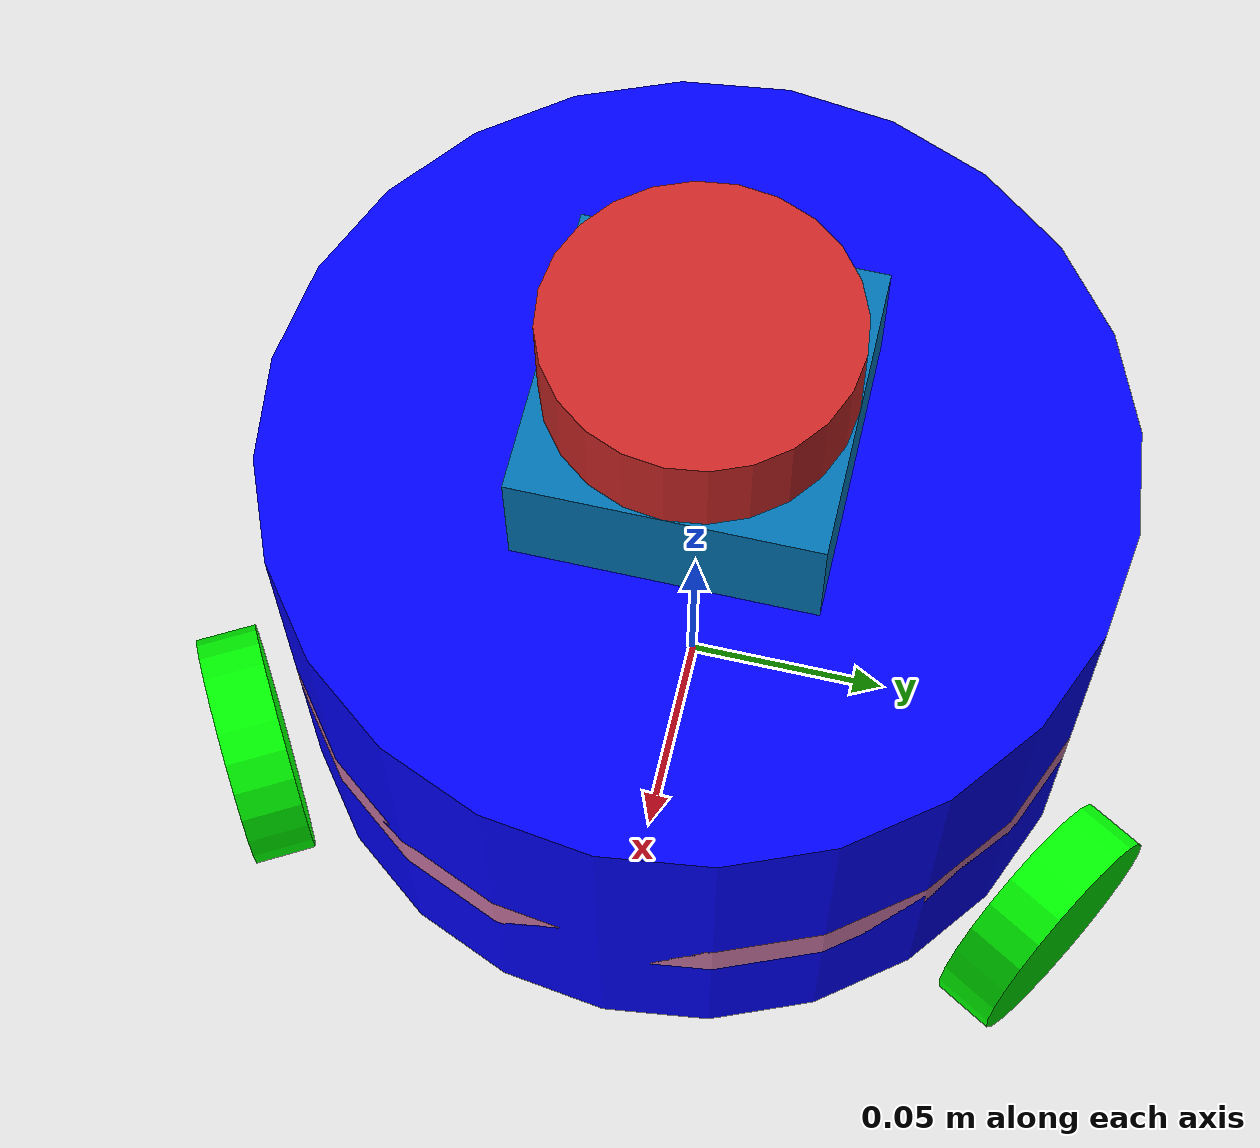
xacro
<?xml version="1.0"?>
<robot name="robot_omni" xmlns:xacro="http://ros.org/wiki/xacro">

  <xacro:include filename="/home/vboxuser/Escritorio/omnidirectional/urdf/robot_description.xacro"/>
  <xacro:include filename="/home/vboxuser/Escritorio/omnidirectional/urdf/ros_control.xacro"/>
  <xacro:include filename="/home/vboxuser/Escritorio/omnidirectional/urdf/gazebo_plugin.xacro"/>
  <xacro:include filename="/home/vboxuser/Escritorio/omnidirectional/urdf/lidar.xacro"/>
  <xacro:include filename="/home/vboxuser/Escritorio/omnidirectional/urdf/sharp_array.xacro"/>
  <xacro:include filename="/home/vboxuser/Escritorio/omnidirectional/urdf/odometria.xacro"/>
  <xacro:include filename="/home/vboxuser/Escritorio/omnidirectional/urdf/imu.xacro"/>

</robot>

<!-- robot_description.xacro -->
<robot xmlns:xacro="http://ros.org/wiki/xacro">

  <!-- ==================== Parámetros ==================== -->
  <xacro:property name="radio_rueda" value="0.029"/>
  <xacro:property name="ancho_rueda"  value="0.015"/>
  <xacro:property name="masa_rueda"  value="0.3"/>
  <xacro:property name="radio_base"  value="0.10"/>
  <xacro:property name="alto_base"  value="0.11"/>
  <xacro:property name="centro_a_rueda" value="0.115"/>

  <!-- Colores -->
  <xacro:property name="color_chasis" value="0 0 1 1"/>     <!-- Azul -->
  <xacro:property name="color_rueda" value="0 1 0 1"/>      <!-- Negro -->

  <!-- ==================== Chasis base ==================== -->
  <link name="base_link">
    <inertial>
      <mass value="3.0"/>
      <origin xyz="0 0 ${alto_base/2}" rpy="0 0 0"/>
      <inertia ixx="0.02" iyy="0.02" izz="0.04" ixy="0.0" ixz="0.0" iyz="0.0"/>
    </inertial>
    <collision>
      <geometry>
        <cylinder length="${alto_base}" radius="${radio_base}"/>
      </geometry>
      <origin xyz="0 0 ${alto_base/2}" rpy="0 0 0"/>
    </collision>
    <visual>
      <geometry>
        <cylinder length="${alto_base}" radius="${radio_base}"/>
      </geometry>
      <origin xyz="0 0 ${alto_base/2}" rpy="0 0 0"/>
      <material name="color_chasis">
        <color rgba="${color_chasis}"/>
      </material>
    </visual>
  </link>

  <!-- ==================== Macro para ruedas ==================== -->
  <xacro:macro name="rueda" params="link_name joint_name angulo_grados">
    <xacro:property name="angulo_rad" value="${angulo_grados * (3.1415926 / 180.0)}"/>
    <xacro:property name="x_pos" value="${centro_a_rueda * cos(angulo_rad)}"/>
    <xacro:property name="y_pos" value="${centro_a_rueda * sin(angulo_rad)}"/>

    <link name="${link_name}">
      <inertial>
        <mass value="${masa_rueda}"/>
        <origin xyz="0 0 0" rpy="0 0 0"/>
        <inertia ixx="${(masa_rueda/12) * (3*radio_rueda*radio_rueda + ancho_rueda*ancho_rueda)}" iyy="${(masa_rueda/12) * (3*radio_rueda*radio_rueda + ancho_rueda*ancho_rueda)}" izz="${(masa_rueda/2) * (radio_rueda*radio_rueda)}" ixy="0.0" ixz="0.0" iyz="0.0"/>
      </inertial>
      <collision>
      <geometry>
        <cylinder length="${ancho_rueda}" radius="${radio_rueda}"/>
      </geometry>
      <origin xyz="0 0 0" rpy="0 0 0"/>
      <surface>
        <friction>
          <ode>
            <mu>0.9</mu>     <!-- Alta friccion en sentido de giro-->
            <mu2>0.0</mu2>    <!-- Baja friccion en sentido perpendicular al giro-->
          </ode>
        </friction>
      </surface>
      </collision>
      <visual>
        <geometry>
          <cylinder length="${ancho_rueda}" radius="${radio_rueda}"/>
        </geometry>
        <origin xyz="0 0 0" rpy="0 0 0"/>
        <material name="color_rueda">
          <color rgba="${color_rueda}"/>
        </material>
      </visual>
    </link>

    <joint name="${joint_name}" type="continuous">
      <parent link="base_link"/>
      <child link="${link_name}"/>
      <origin xyz="${x_pos} ${y_pos} ${ancho_rueda}" rpy="0 1.5708 ${angulo_rad}"/>
      <axis xyz="0 0 1"/>
    </joint>

  </xacro:macro>

  <!-- ==================== Llamadas a ruedas ==================== -->
  <xacro:rueda link_name="rueda1" joint_name="joint1" angulo_grados="60"/>
  <xacro:rueda link_name="rueda2" joint_name="joint2" angulo_grados="180"/>
  <xacro:rueda link_name="rueda3" joint_name="joint3" angulo_grados="300"/>

</robot>

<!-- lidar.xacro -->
<robot xmlns:xacro="http://www.ros.org/wiki/xacro">

    <joint name="laser_base_joint" type="fixed">
        <parent link="base_link"/>
        <child link="laser_base_link"/>
        <origin xyz="0.0 0.0 ${(alto_base)+(0.0301/2)}" rpy="0.0 0.0 0.0"/>
    </joint>

    <link name="laser_base_link">
        <visual>
            <geometry>
                <box size= "0.07 0.07 0.0301"/>
            </geometry>
        </visual>
        <collision>
            <geometry>
                <box size= "0.07 0.07 0.0301"/>
            </geometry>
        </collision>
    </link>

    <joint name="laser_joint" type="fixed">
        <parent link="laser_base_link"/>
        <child link="laser_link"/>
        <origin xyz="0.0 0.0 ${(0.0234/2)+(0.0301/2)}" rpy="0.0 0.0 0.0"/>
    </joint>

    <link name="laser_link">
        <visual>
            <geometry>
                <cylinder radius="0.035" length="0.0234"/>
            </geometry>
        </visual>
        <collision>
            <geometry>
                <cylinder radius="0.035" length="0.0234"/>
            </geometry>
        </collision>
    </link>

    <gazebo reference="laser_link">
        <material>Gazebo/Red</material>

        <sensor name="laser" type="ray">
            <pose> 0 0 0 0 0 0 </pose> <!-- Origen de sensor -->
            <visualize> true </visualize> <!-- Visualizacion de sensor -->
            <update_rate> 10 </update_rate> <!-- 10 Hz -->
            <ray> <!-- Parametros de sensor virtual -->
                <scan>
                    <horizontal>
                        <samples>360</samples>
                        <min_angle>-3.14</min_angle>
                        <max_angle>3.14</max_angle>
                    </horizontal>
                </scan>
                <range>
                    <min>0.1</min>
                    <max>10</max>
                </range>
            </ray>
            <plugin name="laser_controller" filename="libgazebo_ros_ray_sensor.so">
                <ros>
                    <argument>~/out:=scan</argument>
                </ros>
                <output_type>sensor_msgs/LaserScan</output_type>
                <frame_name>laser_link</frame_name>
            </plugin>
        </sensor>
    </gazebo>

</robot>

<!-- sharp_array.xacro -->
<robot xmlns:xacro="http://www.ros.org/wiki/xacro">

    <joint name="sharp_array_joint" type="fixed">
        <parent link="base_link"/>
        <child link="sharp_array_link"/>
        <origin xyz="0.0 0.0 0.0462" rpy="0.0 0.0 0.0"/>
    </joint>

    <link name="sharp_array_link">
        <visual>
            <geometry>
                <cylinder radius="${radio_base}" length="0.0128"/>
            </geometry>
        </visual>
        <collision>
            <geometry>
                <cylinder radius="${radio_base}" length="0.0128"/>
            </geometry>
        </collision>
    </link>

    <gazebo reference="sharp_array_link">
        <sensor name="sharp" type="ray">
            <pose> 0 0 0 0 0 0 </pose> <!-- Origen de sensor -->
            <visualize> true </visualize> <!-- Visualizacion de sensor -->
            <update_rate> 10 </update_rate> <!-- 10 Hz -->
            <ray> <!-- Parametros de sensor virtual -->
                <scan>
                    <horizontal>
                        <samples>9</samples>
                        <min_angle>-3.14</min_angle>
                        <max_angle>3.14</max_angle>
                    </horizontal>
                </scan>
                <range>
                    <min>0.12</min>
                    <max>0.8</max>
                </range>
            </ray>
            <plugin name="laser_controller" filename="libgazebo_ros_ray_sensor.so">
                <ros>
                    <namespace>distance</namespace>
                    <argument>~/out:=sharp_scan</argument>
                </ros>
                <output_type>sensor_msgs/LaserScan</output_type>
                <frame_name>sharp_array_link</frame_name>
            </plugin>
        </sensor>
    </gazebo>

</robot>
